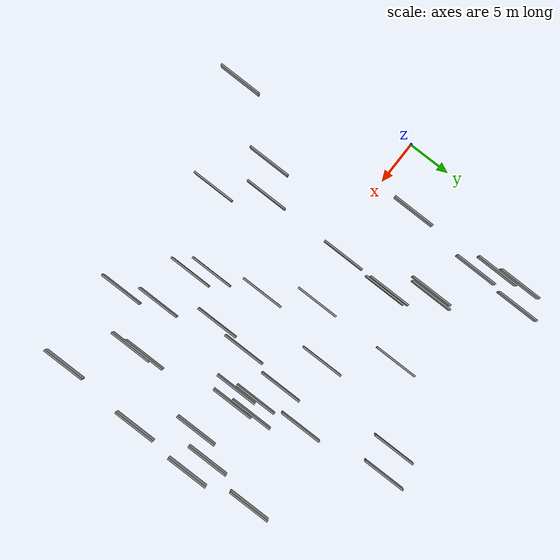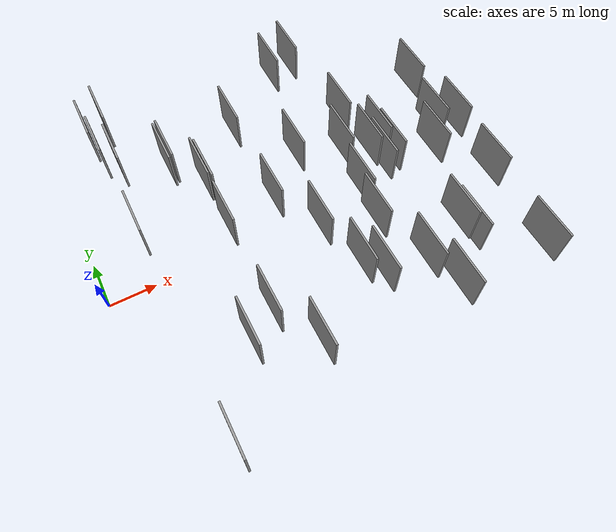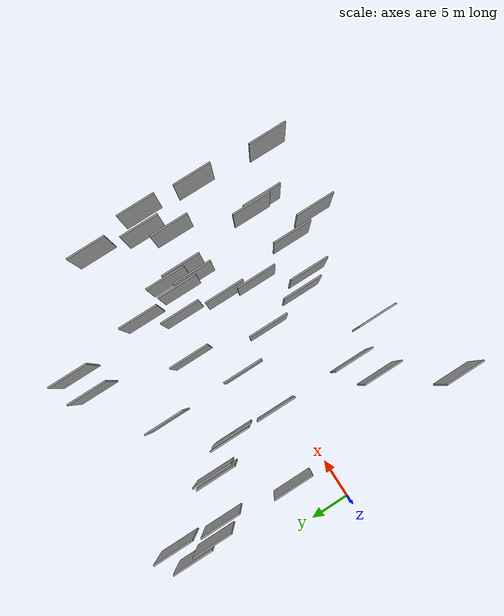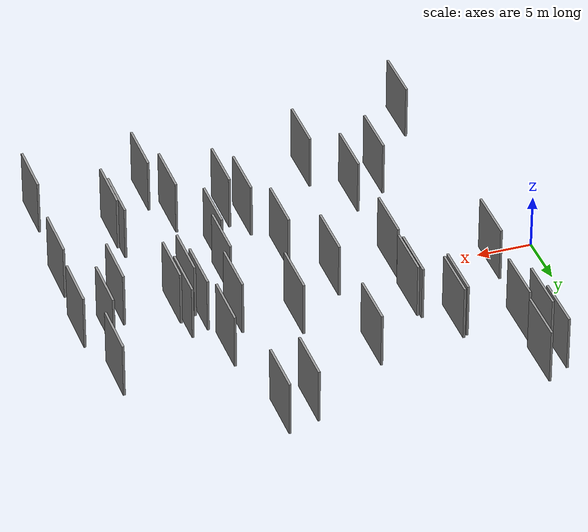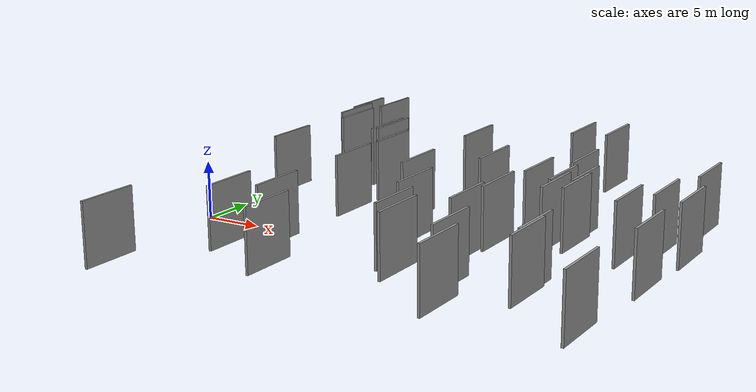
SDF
<sdf version="1.6">
 <world name="default">
  <scene>
   <sky><clouds><speed>12</speed></clouds></sky>
   <ambient>0.4 0.4 0.4 1</ambient>
   <background>0.7 0.7 0.7 1</background>
   <shadows>1</shadows>
  </scene>
  <gravity>0 0 -9.8066</gravity>
  <magnetic_field>6e-06 2.3e-05 -4.2e-05</magnetic_field>
  <physics default="0" name="default_physics" type="ode">
   <ode>
    <solver>
     <type>quick</type>
     <iters>10</iters>
     <sor>1.0</sor>
     <use_dynamic_moi_rescaling>0</use_dynamic_moi_rescaling>
    </solver>
    <constraints>
     <cfm>0</cfm>
     <erp>0.2</erp>
     <contact_max_correcting_vel>100</contact_max_correcting_vel>
     <contact_surface_layer>0.001</contact_surface_layer>
    </constraints>
   </ode>
   <max_step_size>0.004</max_step_size>
   <real_time_factor>1</real_time_factor>
   <real_time_update_rate>250</real_time_update_rate>
  </physics>
  <light name="sun" type="directional">
   <pose>0 0 10 0 0 0</pose>
   <diffuse>0.8 0.8 0.8 1</diffuse>
   <specular>0.2 0.2 0.2 1</specular>
   <attenuation>
    <range>1000</range>
    <constant>0.9</constant>
    <linear>0.01</linear>
    <quadratic>0.001</quadratic>
   </attenuation>
   <direction>-0.5 0.1 -0.9</direction>
  </light>
  <model name="grey_wall_1">
   <static>1</static>
   <pose>27.5637 -4.5949 2.5 0.000000 0.000000 1.570796</pose>
   <link name="link">
    <pose>0 0 2.50 0 0 0</pose>
    <collision name="collision"><geometry><box><size>5.00 0.2 5.00</size></box></geometry></collision>
    <visual name="visual">
     <cast_shadows>0</cast_shadows>
     <geometry><box><size>5.00 0.2 5.00</size></box></geometry>
     <material>
      <script>
       <uri>model://grey_wall/materials/scripts</uri>
       <uri>model://grey_wall/materials/textures</uri>
       <name>vrc/grey_wall</name>
      </script>
     </material>
    </visual>
   </link>
  </model>
  <model name="grey_wall_2">
   <static>1</static>
   <pose>40.7192 9.8620 2.5 0.000000 0.000000 1.570796</pose>
   <link name="link">
    <pose>0 0 2.50 0 0 0</pose>
    <collision name="collision"><geometry><box><size>5.00 0.2 5.00</size></box></geometry></collision>
    <visual name="visual">
     <cast_shadows>0</cast_shadows>
     <geometry><box><size>5.00 0.2 5.00</size></box></geometry>
     <material>
      <script>
       <uri>model://grey_wall/materials/scripts</uri>
       <uri>model://grey_wall/materials/textures</uri>
       <name>vrc/grey_wall</name>
      </script>
     </material>
    </visual>
   </link>
  </model>
  <model name="grey_wall_3">
   <static>1</static>
   <pose>5.9075 -18.3502 2.5 0.000000 0.000000 1.570796</pose>
   <link name="link">
    <pose>0 0 2.50 0 0 0</pose>
    <collision name="collision"><geometry><box><size>5.00 0.2 5.00</size></box></geometry></collision>
    <visual name="visual">
     <cast_shadows>0</cast_shadows>
     <geometry><box><size>5.00 0.2 5.00</size></box></geometry>
     <material>
      <script>
       <uri>model://grey_wall/materials/scripts</uri>
       <uri>model://grey_wall/materials/textures</uri>
       <name>vrc/grey_wall</name>
      </script>
     </material>
    </visual>
   </link>
  </model>
  <model name="grey_wall_4">
   <static>1</static>
   <pose>39.6211 3.4792 2.5 0.000000 0.000000 1.570796</pose>
   <link name="link">
    <pose>0 0 2.50 0 0 0</pose>
    <collision name="collision"><geometry><box><size>5.00 0.2 5.00</size></box></geometry></collision>
    <visual name="visual">
     <cast_shadows>0</cast_shadows>
     <geometry><box><size>5.00 0.2 5.00</size></box></geometry>
     <material>
      <script>
       <uri>model://grey_wall/materials/scripts</uri>
       <uri>model://grey_wall/materials/textures</uri>
       <name>vrc/grey_wall</name>
      </script>
     </material>
    </visual>
   </link>
  </model>
  <model name="grey_wall_5">
   <static>1</static>
   <pose>31.4234 3.5191 2.5 0.000000 0.000000 1.570796</pose>
   <link name="link">
    <pose>0 0 2.50 0 0 0</pose>
    <collision name="collision"><geometry><box><size>5.00 0.2 5.00</size></box></geometry></collision>
    <visual name="visual">
     <cast_shadows>0</cast_shadows>
     <geometry><box><size>5.00 0.2 5.00</size></box></geometry>
     <material>
      <script>
       <uri>model://grey_wall/materials/scripts</uri>
       <uri>model://grey_wall/materials/textures</uri>
       <name>vrc/grey_wall</name>
      </script>
     </material>
    </visual>
   </link>
  </model>
  <model name="grey_wall_6">
   <static>1</static>
   <pose>14.0777 7.2195 2.5 0.000000 0.000000 1.570796</pose>
   <link name="link">
    <pose>0 0 2.50 0 0 0</pose>
    <collision name="collision"><geometry><box><size>5.00 0.2 5.00</size></box></geometry></collision>
    <visual name="visual">
     <cast_shadows>0</cast_shadows>
     <geometry><box><size>5.00 0.2 5.00</size></box></geometry>
     <material>
      <script>
       <uri>model://grey_wall/materials/scripts</uri>
       <uri>model://grey_wall/materials/textures</uri>
       <name>vrc/grey_wall</name>
      </script>
     </material>
    </visual>
   </link>
  </model>
  <model name="grey_wall_7">
   <static>1</static>
   <pose>41.4956 -4.7548 2.5 0.000000 0.000000 1.570796</pose>
   <link name="link">
    <pose>0 0 2.50 0 0 0</pose>
    <collision name="collision"><geometry><box><size>5.00 0.2 5.00</size></box></geometry></collision>
    <visual name="visual">
     <cast_shadows>0</cast_shadows>
     <geometry><box><size>5.00 0.2 5.00</size></box></geometry>
     <material>
      <script>
       <uri>model://grey_wall/materials/scripts</uri>
       <uri>model://grey_wall/materials/textures</uri>
       <name>vrc/grey_wall</name>
      </script>
     </material>
    </visual>
   </link>
  </model>
  <model name="grey_wall_8">
   <static>1</static>
   <pose>16.5166 -13.6902 2.5 0.000000 0.000000 1.570796</pose>
   <link name="link">
    <pose>0 0 2.50 0 0 0</pose>
    <collision name="collision"><geometry><box><size>5.00 0.2 5.00</size></box></geometry></collision>
    <visual name="visual">
     <cast_shadows>0</cast_shadows>
     <geometry><box><size>5.00 0.2 5.00</size></box></geometry>
     <material>
      <script>
       <uri>model://grey_wall/materials/scripts</uri>
       <uri>model://grey_wall/materials/textures</uri>
       <name>vrc/grey_wall</name>
      </script>
     </material>
    </visual>
   </link>
  </model>
  <model name="grey_wall_9">
   <static>1</static>
   <pose>31.8495 1.2687 2.5 0.000000 0.000000 1.570796</pose>
   <link name="link">
    <pose>0 0 2.50 0 0 0</pose>
    <collision name="collision"><geometry><box><size>5.00 0.2 5.00</size></box></geometry></collision>
    <visual name="visual">
     <cast_shadows>0</cast_shadows>
     <geometry><box><size>5.00 0.2 5.00</size></box></geometry>
     <material>
      <script>
       <uri>model://grey_wall/materials/scripts</uri>
       <uri>model://grey_wall/materials/textures</uri>
       <name>vrc/grey_wall</name>
      </script>
     </material>
    </visual>
   </link>
  </model>
  <model name="grey_wall_10">
   <static>1</static>
   <pose>37.8703 0.5974 2.5 0.000000 0.000000 1.570796</pose>
   <link name="link">
    <pose>0 0 2.50 0 0 0</pose>
    <collision name="collision"><geometry><box><size>5.00 0.2 5.00</size></box></geometry></collision>
    <visual name="visual">
     <cast_shadows>0</cast_shadows>
     <geometry><box><size>5.00 0.2 5.00</size></box></geometry>
     <material>
      <script>
       <uri>model://grey_wall/materials/scripts</uri>
       <uri>model://grey_wall/materials/textures</uri>
       <name>vrc/grey_wall</name>
      </script>
     </material>
    </visual>
   </link>
  </model>
  <model name="grey_wall_11">
   <static>1</static>
   <pose>11.1091 11.1406 2.5 0.000000 0.000000 1.570796</pose>
   <link name="link">
    <pose>0 0 2.50 0 0 0</pose>
    <collision name="collision"><geometry><box><size>5.00 0.2 5.00</size></box></geometry></collision>
    <visual name="visual">
     <cast_shadows>0</cast_shadows>
     <geometry><box><size>5.00 0.2 5.00</size></box></geometry>
     <material>
      <script>
       <uri>model://grey_wall/materials/scripts</uri>
       <uri>model://grey_wall/materials/textures</uri>
       <name>vrc/grey_wall</name>
      </script>
     </material>
    </visual>
   </link>
  </model>
  <model name="grey_wall_12">
   <static>1</static>
   <pose>41.9129 2.5481 2.5 0.000000 0.000000 1.570796</pose>
   <link name="link">
    <pose>0 0 2.50 0 0 0</pose>
    <collision name="collision"><geometry><box><size>5.00 0.2 5.00</size></box></geometry></collision>
    <visual name="visual">
     <cast_shadows>0</cast_shadows>
     <geometry><box><size>5.00 0.2 5.00</size></box></geometry>
     <material>
      <script>
       <uri>model://grey_wall/materials/scripts</uri>
       <uri>model://grey_wall/materials/textures</uri>
       <name>vrc/grey_wall</name>
      </script>
     </material>
    </visual>
   </link>
  </model>
  <model name="grey_wall_13">
   <static>1</static>
   <pose>28.7899 4.7964 2.5 0.000000 0.000000 1.570796</pose>
   <link name="link">
    <pose>0 0 2.50 0 0 0</pose>
    <collision name="collision"><geometry><box><size>5.00 0.2 5.00</size></box></geometry></collision>
    <visual name="visual">
     <cast_shadows>0</cast_shadows>
     <geometry><box><size>5.00 0.2 5.00</size></box></geometry>
     <material>
      <script>
       <uri>model://grey_wall/materials/scripts</uri>
       <uri>model://grey_wall/materials/textures</uri>
       <name>vrc/grey_wall</name>
      </script>
     </material>
    </visual>
   </link>
  </model>
  <model name="grey_wall_14">
   <static>1</static>
   <pose>30.9731 -14.7214 2.5 0.000000 0.000000 1.570796</pose>
   <link name="link">
    <pose>0 0 2.50 0 0 0</pose>
    <collision name="collision"><geometry><box><size>5.00 0.2 5.00</size></box></geometry></collision>
    <visual name="visual">
     <cast_shadows>0</cast_shadows>
     <geometry><box><size>5.00 0.2 5.00</size></box></geometry>
     <material>
      <script>
       <uri>model://grey_wall/materials/scripts</uri>
       <uri>model://grey_wall/materials/textures</uri>
       <name>vrc/grey_wall</name>
      </script>
     </material>
    </visual>
   </link>
  </model>
  <model name="grey_wall_15">
   <static>1</static>
   <pose>13.8165 7.6348 2.5 0.000000 0.000000 1.570796</pose>
   <link name="link">
    <pose>0 0 2.50 0 0 0</pose>
    <collision name="collision"><geometry><box><size>5.00 0.2 5.00</size></box></geometry></collision>
    <visual name="visual">
     <cast_shadows>0</cast_shadows>
     <geometry><box><size>5.00 0.2 5.00</size></box></geometry>
     <material>
      <script>
       <uri>model://grey_wall/materials/scripts</uri>
       <uri>model://grey_wall/materials/textures</uri>
       <name>vrc/grey_wall</name>
      </script>
     </material>
    </visual>
   </link>
  </model>
  <model name="grey_wall_16">
   <static>1</static>
   <pose>19.3942 2.3693 2.5 0.000000 0.000000 1.570796</pose>
   <link name="link">
    <pose>0 0 2.50 0 0 0</pose>
    <collision name="collision"><geometry><box><size>5.00 0.2 5.00</size></box></geometry></collision>
    <visual name="visual">
     <cast_shadows>0</cast_shadows>
     <geometry><box><size>5.00 0.2 5.00</size></box></geometry>
     <material>
      <script>
       <uri>model://grey_wall/materials/scripts</uri>
       <uri>model://grey_wall/materials/textures</uri>
       <name>vrc/grey_wall</name>
      </script>
     </material>
    </visual>
   </link>
  </model>
  <model name="grey_wall_17">
   <static>1</static>
   <pose>11.4869 11.3914 2.5 0.000000 0.000000 1.570796</pose>
   <link name="link">
    <pose>0 0 2.50 0 0 0</pose>
    <collision name="collision"><geometry><box><size>5.00 0.2 5.00</size></box></geometry></collision>
    <visual name="visual">
     <cast_shadows>0</cast_shadows>
     <geometry><box><size>5.00 0.2 5.00</size></box></geometry>
     <material>
      <script>
       <uri>model://grey_wall/materials/scripts</uri>
       <uri>model://grey_wall/materials/textures</uri>
       <name>vrc/grey_wall</name>
      </script>
     </material>
    </visual>
   </link>
  </model>
  <model name="grey_wall_18">
   <static>1</static>
   <pose>29.6812 -10.8142 2.5 0.000000 0.000000 1.570796</pose>
   <link name="link">
    <pose>0 0 2.50 0 0 0</pose>
    <collision name="collision"><geometry><box><size>5.00 0.2 5.00</size></box></geometry></collision>
    <visual name="visual">
     <cast_shadows>0</cast_shadows>
     <geometry><box><size>5.00 0.2 5.00</size></box></geometry>
     <material>
      <script>
       <uri>model://grey_wall/materials/scripts</uri>
       <uri>model://grey_wall/materials/textures</uri>
       <name>vrc/grey_wall</name>
      </script>
     </material>
    </visual>
   </link>
  </model>
  <model name="grey_wall_19">
   <static>1</static>
   <pose>6.8335 19.2746 2.5 0.000000 0.000000 1.570796</pose>
   <link name="link">
    <pose>0 0 2.50 0 0 0</pose>
    <collision name="collision"><geometry><box><size>5.00 0.2 5.00</size></box></geometry></collision>
    <visual name="visual">
     <cast_shadows>0</cast_shadows>
     <geometry><box><size>5.00 0.2 5.00</size></box></geometry>
     <material>
      <script>
       <uri>model://grey_wall/materials/scripts</uri>
       <uri>model://grey_wall/materials/textures</uri>
       <name>vrc/grey_wall</name>
      </script>
     </material>
    </visual>
   </link>
  </model>
  <model name="grey_wall_20">
   <static>1</static>
   <pose>30.8264 9.0242 2.5 0.000000 0.000000 1.570796</pose>
   <link name="link">
    <pose>0 0 2.50 0 0 0</pose>
    <collision name="collision"><geometry><box><size>5.00 0.2 5.00</size></box></geometry></collision>
    <visual name="visual">
     <cast_shadows>0</cast_shadows>
     <geometry><box><size>5.00 0.2 5.00</size></box></geometry>
     <material>
      <script>
       <uri>model://grey_wall/materials/scripts</uri>
       <uri>model://grey_wall/materials/textures</uri>
       <name>vrc/grey_wall</name>
      </script>
     </material>
    </visual>
   </link>
  </model>
  <model name="grey_wall_21">
   <static>1</static>
   <pose>29.4355 19.0526 2.5 0.000000 0.000000 1.570796</pose>
   <link name="link">
    <pose>0 0 2.50 0 0 0</pose>
    <collision name="collision"><geometry><box><size>5.00 0.2 5.00</size></box></geometry></collision>
    <visual name="visual">
     <cast_shadows>0</cast_shadows>
     <geometry><box><size>5.00 0.2 5.00</size></box></geometry>
     <material>
      <script>
       <uri>model://grey_wall/materials/scripts</uri>
       <uri>model://grey_wall/materials/textures</uri>
       <name>vrc/grey_wall</name>
      </script>
     </material>
    </visual>
   </link>
  </model>
  <model name="grey_wall_22">
   <static>1</static>
   <pose>13.7806 -8.7569 2.5 0.000000 0.000000 1.570796</pose>
   <link name="link">
    <pose>0 0 2.50 0 0 0</pose>
    <collision name="collision"><geometry><box><size>5.00 0.2 5.00</size></box></geometry></collision>
    <visual name="visual">
     <cast_shadows>0</cast_shadows>
     <geometry><box><size>5.00 0.2 5.00</size></box></geometry>
     <material>
      <script>
       <uri>model://grey_wall/materials/scripts</uri>
       <uri>model://grey_wall/materials/textures</uri>
       <name>vrc/grey_wall</name>
      </script>
     </material>
    </visual>
   </link>
  </model>
  <model name="grey_wall_23">
   <static>1</static>
   <pose>26.6586 18.2300 2.5 0.000000 0.000000 1.570796</pose>
   <link name="link">
    <pose>0 0 2.50 0 0 0</pose>
    <collision name="collision"><geometry><box><size>5.00 0.2 5.00</size></box></geometry></collision>
    <visual name="visual">
     <cast_shadows>0</cast_shadows>
     <geometry><box><size>5.00 0.2 5.00</size></box></geometry>
     <material>
      <script>
       <uri>model://grey_wall/materials/scripts</uri>
       <uri>model://grey_wall/materials/textures</uri>
       <name>vrc/grey_wall</name>
      </script>
     </material>
    </visual>
   </link>
  </model>
  <model name="grey_wall_24">
   <static>1</static>
   <pose>13.8288 1.5279 2.5 0.000000 0.000000 1.570796</pose>
   <link name="link">
    <pose>0 0 2.50 0 0 0</pose>
    <collision name="collision"><geometry><box><size>5.00 0.2 5.00</size></box></geometry></collision>
    <visual name="visual">
     <cast_shadows>0</cast_shadows>
     <geometry><box><size>5.00 0.2 5.00</size></box></geometry>
     <material>
      <script>
       <uri>model://grey_wall/materials/scripts</uri>
       <uri>model://grey_wall/materials/textures</uri>
       <name>vrc/grey_wall</name>
      </script>
     </material>
    </visual>
   </link>
  </model>
  <model name="grey_wall_25">
   <static>1</static>
   <pose>28.0621 -0.6529 2.5 0.000000 0.000000 1.570796</pose>
   <link name="link">
    <pose>0 0 2.50 0 0 0</pose>
    <collision name="collision"><geometry><box><size>5.00 0.2 5.00</size></box></geometry></collision>
    <visual name="visual">
     <cast_shadows>0</cast_shadows>
     <geometry><box><size>5.00 0.2 5.00</size></box></geometry>
     <material>
      <script>
       <uri>model://grey_wall/materials/scripts</uri>
       <uri>model://grey_wall/materials/textures</uri>
       <name>vrc/grey_wall</name>
      </script>
     </material>
    </visual>
   </link>
  </model>
  <model name="grey_wall_26">
   <static>1</static>
   <pose>23.7025 -8.3374 2.5 0.000000 0.000000 1.570796</pose>
   <link name="link">
    <pose>0 0 2.50 0 0 0</pose>
    <collision name="collision"><geometry><box><size>5.00 0.2 5.00</size></box></geometry></collision>
    <visual name="visual">
     <cast_shadows>0</cast_shadows>
     <geometry><box><size>5.00 0.2 5.00</size></box></geometry>
     <material>
      <script>
       <uri>model://grey_wall/materials/scripts</uri>
       <uri>model://grey_wall/materials/textures</uri>
       <name>vrc/grey_wall</name>
      </script>
     </material>
    </visual>
   </link>
  </model>
  <model name="grey_wall_27">
   <static>1</static>
   <pose>10.8087 -10.6900 2.5 0.000000 0.000000 1.570796</pose>
   <link name="link">
    <pose>0 0 2.50 0 0 0</pose>
    <collision name="collision"><geometry><box><size>5.00 0.2 5.00</size></box></geometry></collision>
    <visual name="visual">
     <cast_shadows>0</cast_shadows>
     <geometry><box><size>5.00 0.2 5.00</size></box></geometry>
     <material>
      <script>
       <uri>model://grey_wall/materials/scripts</uri>
       <uri>model://grey_wall/materials/textures</uri>
       <name>vrc/grey_wall</name>
      </script>
     </material>
    </visual>
   </link>
  </model>
  <model name="grey_wall_28">
   <static>1</static>
   <pose>23.9989 6.5804 2.5 0.000000 0.000000 1.570796</pose>
   <link name="link">
    <pose>0 0 2.50 0 0 0</pose>
    <collision name="collision"><geometry><box><size>5.00 0.2 5.00</size></box></geometry></collision>
    <visual name="visual">
     <cast_shadows>0</cast_shadows>
     <geometry><box><size>5.00 0.2 5.00</size></box></geometry>
     <material>
      <script>
       <uri>model://grey_wall/materials/scripts</uri>
       <uri>model://grey_wall/materials/textures</uri>
       <name>vrc/grey_wall</name>
      </script>
     </material>
    </visual>
   </link>
  </model>
  <model name="grey_wall_29">
   <static>1</static>
   <pose>4.8075 18.0208 2.5 0.000000 0.000000 1.570796</pose>
   <link name="link">
    <pose>0 0 2.50 0 0 0</pose>
    <collision name="collision"><geometry><box><size>5.00 0.2 5.00</size></box></geometry></collision>
    <visual name="visual">
     <cast_shadows>0</cast_shadows>
     <geometry><box><size>5.00 0.2 5.00</size></box></geometry>
     <material>
      <script>
       <uri>model://grey_wall/materials/scripts</uri>
       <uri>model://grey_wall/materials/textures</uri>
       <name>vrc/grey_wall</name>
      </script>
     </material>
    </visual>
   </link>
  </model>
  <model name="grey_wall_30">
   <static>1</static>
   <pose>22.1654 -2.7842 2.5 0.000000 0.000000 1.570796</pose>
   <link name="link">
    <pose>0 0 2.50 0 0 0</pose>
    <collision name="collision"><geometry><box><size>5.00 0.2 5.00</size></box></geometry></collision>
    <visual name="visual">
     <cast_shadows>0</cast_shadows>
     <geometry><box><size>5.00 0.2 5.00</size></box></geometry>
     <material>
      <script>
       <uri>model://grey_wall/materials/scripts</uri>
       <uri>model://grey_wall/materials/textures</uri>
       <name>vrc/grey_wall</name>
      </script>
     </material>
    </visual>
   </link>
  </model>
  <model name="grey_wall_31">
   <static>1</static>
   <pose>35.1457 -10.1974 2.5 0.000000 0.000000 1.570796</pose>
   <link name="link">
    <pose>0 0 2.50 0 0 0</pose>
    <collision name="collision"><geometry><box><size>5.00 0.2 5.00</size></box></geometry></collision>
    <visual name="visual">
     <cast_shadows>0</cast_shadows>
     <geometry><box><size>5.00 0.2 5.00</size></box></geometry>
     <material>
      <script>
       <uri>model://grey_wall/materials/scripts</uri>
       <uri>model://grey_wall/materials/textures</uri>
       <name>vrc/grey_wall</name>
      </script>
     </material>
    </visual>
   </link>
  </model>
  <model name="grey_wall_32">
   <static>1</static>
   <pose>34.9421 -8.6151 2.5 0.000000 0.000000 1.570796</pose>
   <link name="link">
    <pose>0 0 2.50 0 0 0</pose>
    <collision name="collision"><geometry><box><size>5.00 0.2 5.00</size></box></geometry></collision>
    <visual name="visual">
     <cast_shadows>0</cast_shadows>
     <geometry><box><size>5.00 0.2 5.00</size></box></geometry>
     <material>
      <script>
       <uri>model://grey_wall/materials/scripts</uri>
       <uri>model://grey_wall/materials/textures</uri>
       <name>vrc/grey_wall</name>
      </script>
     </material>
    </visual>
   </link>
  </model>
  <model name="grey_wall_33">
   <static>1</static>
   <pose>5.6395 4.5106 2.5 0.000000 0.000000 1.570796</pose>
   <link name="link">
    <pose>0 0 2.50 0 0 0</pose>
    <collision name="collision"><geometry><box><size>5.00 0.2 5.00</size></box></geometry></collision>
    <visual name="visual">
     <cast_shadows>0</cast_shadows>
     <geometry><box><size>5.00 0.2 5.00</size></box></geometry>
     <material>
      <script>
       <uri>model://grey_wall/materials/scripts</uri>
       <uri>model://grey_wall/materials/textures</uri>
       <name>vrc/grey_wall</name>
      </script>
     </material>
    </visual>
   </link>
  </model>
  <model name="grey_wall_34">
   <static>1</static>
   <pose>19.2777 12.7502 2.5 0.000000 0.000000 1.570796</pose>
   <link name="link">
    <pose>0 0 2.50 0 0 0</pose>
    <collision name="collision"><geometry><box><size>5.00 0.2 5.00</size></box></geometry></collision>
    <visual name="visual">
     <cast_shadows>0</cast_shadows>
     <geometry><box><size>5.00 0.2 5.00</size></box></geometry>
     <material>
      <script>
       <uri>model://grey_wall/materials/scripts</uri>
       <uri>model://grey_wall/materials/textures</uri>
       <name>vrc/grey_wall</name>
      </script>
     </material>
    </visual>
   </link>
  </model>
  <model name="grey_wall_35">
   <static>1</static>
   <pose>5.1809 15.3092 2.5 0.000000 0.000000 1.570796</pose>
   <link name="link">
    <pose>0 0 2.50 0 0 0</pose>
    <collision name="collision"><geometry><box><size>5.00 0.2 5.00</size></box></geometry></collision>
    <visual name="visual">
     <cast_shadows>0</cast_shadows>
     <geometry><box><size>5.00 0.2 5.00</size></box></geometry>
     <material>
      <script>
       <uri>model://grey_wall/materials/scripts</uri>
       <uri>model://grey_wall/materials/textures</uri>
       <name>vrc/grey_wall</name>
      </script>
     </material>
    </visual>
   </link>
  </model>
  <model name="grey_wall_36">
   <static>1</static>
   <pose>6.4866 13.4512 2.5 0.000000 0.000000 1.570796</pose>
   <link name="link">
    <pose>0 0 2.50 0 0 0</pose>
    <collision name="collision"><geometry><box><size>5.00 0.2 5.00</size></box></geometry></collision>
    <visual name="visual">
     <cast_shadows>0</cast_shadows>
     <geometry><box><size>5.00 0.2 5.00</size></box></geometry>
     <material>
      <script>
       <uri>model://grey_wall/materials/scripts</uri>
       <uri>model://grey_wall/materials/textures</uri>
       <name>vrc/grey_wall</name>
      </script>
     </material>
    </visual>
   </link>
  </model>
  <model name="grey_wall_37">
   <static>1</static>
   <pose>32.9582 4.1336 2.5 0.000000 0.000000 1.570796</pose>
   <link name="link">
    <pose>0 0 2.50 0 0 0</pose>
    <collision name="collision"><geometry><box><size>5.00 0.2 5.00</size></box></geometry></collision>
    <visual name="visual">
     <cast_shadows>0</cast_shadows>
     <geometry><box><size>5.00 0.2 5.00</size></box></geometry>
     <material>
      <script>
       <uri>model://grey_wall/materials/scripts</uri>
       <uri>model://grey_wall/materials/textures</uri>
       <name>vrc/grey_wall</name>
      </script>
     </material>
    </visual>
   </link>
  </model>
  <model name="grey_wall_38">
   <static>1</static>
   <pose>25.0898 -10.0879 2.5 0.000000 0.000000 1.570796</pose>
   <link name="link">
    <pose>0 0 2.50 0 0 0</pose>
    <collision name="collision"><geometry><box><size>5.00 0.2 5.00</size></box></geometry></collision>
    <visual name="visual">
     <cast_shadows>0</cast_shadows>
     <geometry><box><size>5.00 0.2 5.00</size></box></geometry>
     <material>
      <script>
       <uri>model://grey_wall/materials/scripts</uri>
       <uri>model://grey_wall/materials/textures</uri>
       <name>vrc/grey_wall</name>
      </script>
     </material>
    </visual>
   </link>
  </model>
  <model name="grey_wall_39">
   <static>1</static>
   <pose>33.2816 1.8690 2.5 0.000000 0.000000 1.570796</pose>
   <link name="link">
    <pose>0 0 2.50 0 0 0</pose>
    <collision name="collision"><geometry><box><size>5.00 0.2 5.00</size></box></geometry></collision>
    <visual name="visual">
     <cast_shadows>0</cast_shadows>
     <geometry><box><size>5.00 0.2 5.00</size></box></geometry>
     <material>
      <script>
       <uri>model://grey_wall/materials/scripts</uri>
       <uri>model://grey_wall/materials/textures</uri>
       <name>vrc/grey_wall</name>
      </script>
     </material>
    </visual>
   </link>
  </model>
  <model name="grey_wall_40">
   <static>1</static>
   <pose>40.9082 -14.6178 2.5 0.000000 0.000000 1.570796</pose>
   <link name="link">
    <pose>0 0 2.50 0 0 0</pose>
    <collision name="collision"><geometry><box><size>5.00 0.2 5.00</size></box></geometry></collision>
    <visual name="visual">
     <cast_shadows>0</cast_shadows>
     <geometry><box><size>5.00 0.2 5.00</size></box></geometry>
     <material>
      <script>
       <uri>model://grey_wall/materials/scripts</uri>
       <uri>model://grey_wall/materials/textures</uri>
       <name>vrc/grey_wall</name>
      </script>
     </material>
    </visual>
   </link>
  </model>
 </world>
</sdf>
